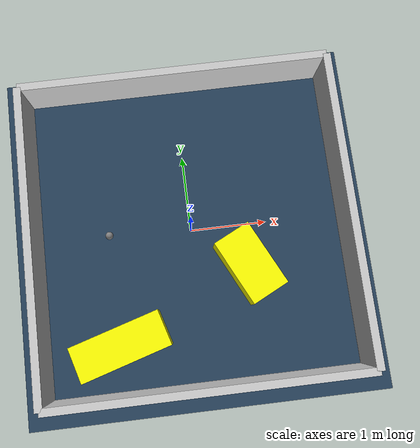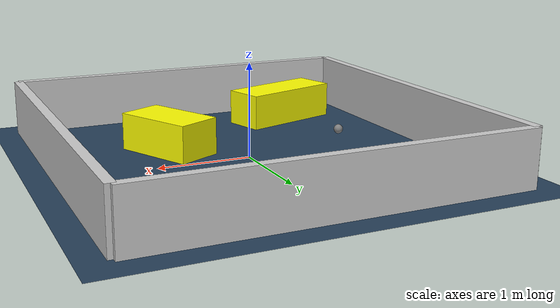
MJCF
<?xml version="1.0" ?>
<mujoco model="generated_environment">
  <option timestep="0.01" integrator="RK4" cone="elliptic"/>
  <default>
    <geom density="1"/>
  </default>
  <asset>
    <texture builtin="gradient" height="3072" rgb1="0.3 0.5 0.7" rgb2="0 0 0" type="skybox" width="512"/>
    <texture builtin="checker" height="300" mark="edge" markrgb="0.8 0.8 0.8" name="groundplane" rgb1="0.2 0.3 0.4" rgb2="0.1 0.2 0.3" type="2d" width="300"/>
    <material name="groundplane" reflectance="0.2" texrepeat="5 5" texture="groundplane" texuniform="true"/>
    <material name="robot" rgba="0.0 1.0 0.0 1"/>
  </asset>
  <worldbody>
    <light dir="0 0 -1" directional="true" pos="0 0 1.5"/>
    <geom condim="4" friction="1.0 0.005 0.001" material="groundplane" name="floor" size="0 0 0.05" type="plane"/>
    <body name="walls">
      <geom name="wall_1" condim="4" pos="-2.0 0.0 0.3" rgba="0.800000011920929 0.800000011920929 0.800000011920929 1.0" size="0.05 2.0 0.3" type="box"/>
      <geom name="wall_2" condim="4" pos="2.0 0.0 0.3" rgba="0.800000011920929 0.800000011920929 0.800000011920929 1.0" size="0.05 2.0 0.3" type="box"/>
      <geom name="wall_3" condim="4" pos="0.0 -2.0 0.3" rgba="0.800000011920929 0.800000011920929 0.800000011920929 1.0" size="2.0 0.05 0.3" type="box"/>
      <geom name="wall_4" condim="4" pos="0.0 2.0 0.3" rgba="0.800000011920929 0.800000011920929 0.800000011920929 1.0" size="2.0 0.05 0.3" type="box"/>
    </body>
    <body name="robot">
      <joint name="joint_x" type="slide" pos="0 0 0" axis="1 0 0"/>
      <joint name="joint_y" type="slide" pos="0 0 0" axis="0 1 0"/>
      <geom name="robot" type="sphere" pos="-1.0512824416146218 0.02501929069135711 0.2" size="0.05" mass="5." friction="1.0 0.005 0.0001" condim="4"/>
      <site name="sensor_ball"/>
    </body>
    <body name="obstacle_1_movable">
      <geom name="obstacle_1_movable" condim="4" pos="-1.0260555350857363 -1.3734039296392222 0.2" euler="0 0 286.62760652809817" friction="1.0 0.005 0.001" rgba="1 1 0 1" size="0.23130709280973116 0.5905113163916765 0.2" type="box" mass="0.1"/>
      <joint type="free"/>
    </body>
    <body name="obstacle_2_movable">
      <geom name="obstacle_2_movable" condim="4" pos="0.6903123740330903 -0.5489442731498955 0.2" euler="0 0 296.2597036905803" friction="1.0 0.005 0.001" rgba="1 1 0 1" size="0.44809804767212225 0.25322157859847677 0.2" type="box" mass="0.1"/>
      <joint type="free"/>
    </body>
  </worldbody>
  <actuator>
    <motor name="actuator_x" joint="joint_x" gear="1" ctrlrange="-1 1"/>
    <motor name="actuator_y" joint="joint_y" gear="1" ctrlrange="-1 1"/>
  </actuator>
</mujoco>
